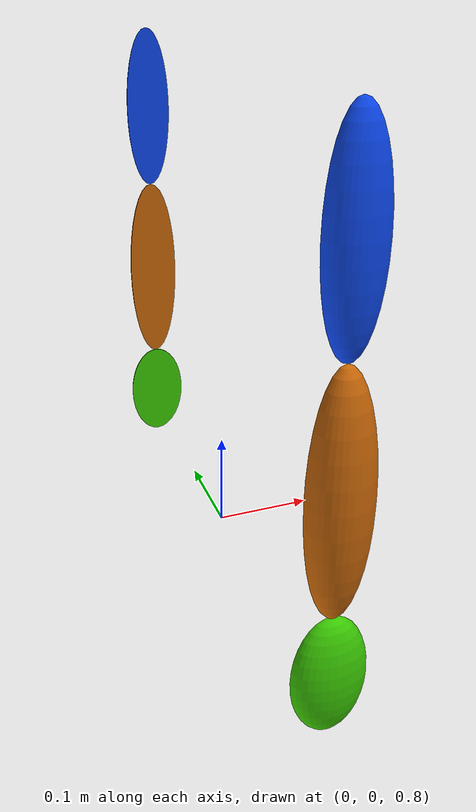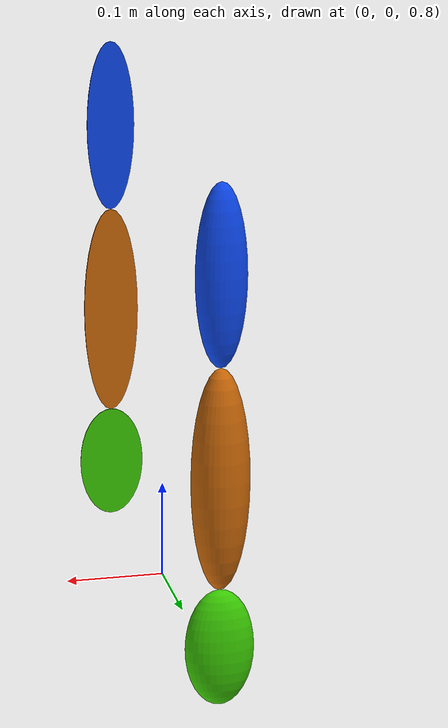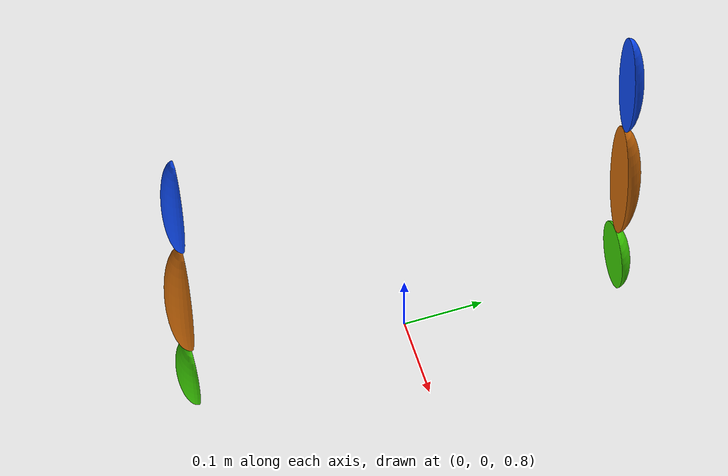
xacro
<?xml version="1.0"?>

<robot xmlns:xacro="http://www.ros.org/wiki/xacro" name="human_model">

    <gazebo>
        <plugin name="gazebo_ros_control" filename="libgazebo_ros_control.so">
            <robotNamespace>/</robotNamespace>
            <robotSimType>gazebo_ros_control/DefaultRobotHWSim</robotSimType>
            <legacyModeNS>true</legacyModeNS>
        </plugin>
    </gazebo>

    <xacro:include filename="$(find human_model)/urdf/arm.urdf.xacro"/>

    <!-- Human upperarm, forearm, hand size parameters -->
    <xacro:property name="arm_scale" value="1"/>
    <xacro:property name="upperarm_length" value="0.1850"/> <!--"${0.2*arm_scale}"/-->
    <xacro:property name="forearm_length" value="0.2264" /> <!--"${0.23*arm_scale}"/-->
    <xacro:property name="hand_length" value="${0.12*arm_scale}"/>
    <xacro:property name="shoulder_height" value="1.3"/>
    <xacro:property name="shoulder_width" value="0.54"/>

    <!-- World link-->
    <link name="world"/>

    <!-- Human model base -->
    <link name="human_base_link">
        <inertial>
            <origin xyz="0 0 0" rpy="0 0 0"/>
            <mass value="1" />
            <inertia ixx="1.0" ixy="0.0" ixz="0.0"
                    iyy="1.0" iyz="0.0"
                    izz="1.0" />
        </inertial>
    </link>
    <joint name="human_base_fixed_joint" type="fixed">
        <origin xyz="0 0 0" rpy="0 0 0"/>
        <parent link="world"/>
        <child link="human_base_link"/>
    </joint>

    <!-- Arms -->
    <xacro:arm prefix="left" parent="human_base_link" dir="-1"
                upperarm_length="${upperarm_length}"
                forearm_length="${forearm_length}"
                hand_length="${hand_length}"
                shoulder_pos_x="0" shoulder_pos_y="${shoulder_width/2}" shoulder_pos_z="${shoulder_height}" />

    <xacro:arm prefix="right" parent="human_base_link" dir="1"
                upperarm_length="${upperarm_length}"
                forearm_length="${forearm_length}"
                hand_length="${hand_length}"
                shoulder_pos_x="0" shoulder_pos_y="-${shoulder_width/2}" shoulder_pos_z="${shoulder_height}" />

</robot>

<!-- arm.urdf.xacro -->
<robot xmlns:xacro="http://www.ros.org/wiki/xacro">

<!-- The arm should be attached to world frame,
     and the shoulder position should be specified by (x,y,z)
     via three prismatic joints.
-->

<param name="pi" value="3.14159"/>

<xacro:macro name="arm" params="dir prefix parent
                                upperarm_length
                                forearm_length
                                hand_length
                                shoulder_pos_x shoulder_pos_y shoulder_pos_z">

    <!-- Shoulder joints -->
    <link name="${prefix}_shoulder_1_link">
        <inertial>
            <origin xyz="0 0 0" rpy="0 0 0"/>
            <mass value="1" />
            <inertia ixx="1.0" ixy="0.0" ixz="0.0"
                    iyy="1.0" iyz="0.0"
                    izz="1.0" />
        </inertial>
    </link>

    <joint name="${prefix}_shoulder_1_joint" type="revolute">
        <origin xyz="${shoulder_pos_x} ${shoulder_pos_y} ${shoulder_pos_z}" rpy="0 0 ${(1-dir)/2*pi}" />
        <axis xyz="0 1 0"/>
        <parent link="${parent}"/>
        <child link="${prefix}_shoulder_1_link"/>
        <limit lower="-${pi}" upper="${pi}" effort="100" velocity="100"/>
    </joint>

    <link name="${prefix}_shoulder_2_link">
        <inertial>
            <origin xyz="0 0 0" rpy="0 0 0"/>
            <mass value="1" />
            <inertia ixx="1.0" ixy="0.0" ixz="0.0"
                    iyy="1.0" iyz="0.0"
                    izz="1.0" />
        </inertial>
    </link>
    <joint name="${prefix}_shoulder_2_joint" type="revolute">
        <origin xyz="0 0 0" rpy="0 0 0"/>
        <axis xyz="1 0 0"/>
        <parent link="${prefix}_shoulder_1_link"/>
        <child link="${prefix}_shoulder_2_link"/>
        <limit lower="-${pi/2}" upper="${pi/2}" effort="100" velocity="100"/>
    </joint>

    <link name="${prefix}_shoulder_3_link"/>
    <joint name="${prefix}_shoulder_3_joint" type="revolute">
        <origin xyz="0 0 0" rpy="0 0 0"/>
        <axis xyz="0 0 1"/>
        <parent link="${prefix}_shoulder_2_link"/>
        <child link="${prefix}_shoulder_3_link"/>
        <limit lower="-${pi*2/3}" upper="${pi*2/3}" effort="100" velocity="100"/>
    </joint>

    <!-- Upperarm link -->
    <link name="${prefix}_upperarm_link">
        <visual>
            <origin xyz="0 0 0" rpy="0 0 ${pi}"/>
            <geometry>
                <mesh filename="package://human_model/meshes/upperarm.dae" scale="${upperarm_length} ${upperarm_length} ${upperarm_length}"/>
            </geometry>
        </visual>
        <collision>
            <origin xyz="0 0 0" rpy="0 0 ${pi}"/>
            <geometry>
                <mesh filename="package://human_model/meshes/upperarm.dae" scale="${upperarm_length} ${upperarm_length} ${upperarm_length}"/>
            </geometry>
        </collision>
        <inertial>
            <origin xyz="0 0 0" rpy="0 0 ${pi}"/>
            <mass value="1" />
            <inertia ixx="1.0" ixy="0.0" ixz="0.0"
                    iyy="1.0" iyz="0.0"
                    izz="1.0" />
        </inertial>
    </link>
    <joint name="${prefix}_upperarm_fixed_joint" type="fixed">
        <origin xyz="0 0 -${upperarm_length/2}" rpy="0 0 0"/>
        <parent link="${prefix}_shoulder_3_link"/>
        <child link="${prefix}_upperarm_link"/>
    </joint>

    <!-- Elbow joints -->
    <link name="${prefix}_elbow_1_link">
        <inertial>
            <origin xyz="0 0 0" rpy="0 0 0"/>
            <mass value="1" />
            <inertia ixx="1.0" ixy="0.0" ixz="0.0"
                    iyy="1.0" iyz="0.0"
                    izz="1.0" />
        </inertial>
    </link>
    <joint name="${prefix}_elbow_1_joint" type="revolute">
        <origin xyz="0 0 -${upperarm_length/2}" rpy="0 0 0"/>
        <axis xyz="1 0 0"/>
        <parent link="${prefix}_upperarm_link"/>
        <child link="${prefix}_elbow_1_link"/>
        <limit lower="-${pi*2/3}" upper="${pi*2/3}" effort="100" velocity="100"/>
    </joint>

    <link name="${prefix}_elbow_2_link">
        <inertial>
            <origin xyz="0 0 0" rpy="0 0 0"/>
            <mass value="1" />
            <inertia ixx="1.0" ixy="0.0" ixz="0.0"
                    iyy="1.0" iyz="0.0"
                    izz="1.0" />
        </inertial>
    </link>

    <joint name="${prefix}_elbow_2_joint" type="revolute">
        <origin xyz="0 0 0" rpy="0 0 0"/>
        <axis xyz="0 0 1"/>
        <parent link="${prefix}_elbow_1_link"/>
        <child link="${prefix}_elbow_2_link"/>
        <limit lower="-${pi*2/3}" upper="${pi*2/3}" effort="100" velocity="100"/>
    </joint>

    <!-- Forearm link -->
    <link name="${prefix}_forearm_link">
        <visual>
            <origin xyz="0 0 0" rpy="0 0 ${pi}"/>
            <geometry>
                <mesh filename="package://human_model/meshes/forearm.dae" scale="${forearm_length} ${forearm_length} ${forearm_length}"/>
            </geometry>
        </visual>
        <collision>
            <origin xyz="0 0 0" rpy="0 0 ${pi}"/>
            <geometry>
                <mesh filename="package://human_model/meshes/forearm.dae" scale="${forearm_length} ${forearm_length} ${forearm_length}"/>
            </geometry>
        </collision>
        <inertial>
            <origin xyz="0 0 0" rpy="0 0 ${pi}"/>
            <mass value="1" />
            <inertia ixx="1.0" ixy="0.0" ixz="0.0"
                    iyy="1.0" iyz="0.0"
                    izz="1.0" />
        </inertial>
    </link>
    <joint name="${prefix}_forearm_fixed_joint" type="fixed">
        <origin xyz="0 0 -${forearm_length/2}" rpy="0 0 0"/>
        <parent link="${prefix}_elbow_2_link"/>
        <child link="${prefix}_forearm_link"/>
    </joint>

    <!-- Wrist joints -->
    <link name="${prefix}_wrist_1_link">
        <inertial>
            <origin xyz="0 0 0" rpy="0 0 0"/>
            <mass value="1" />
            <inertia ixx="1.0" ixy="0.0" ixz="0.0"
                    iyy="1.0" iyz="0.0"
                    izz="1.0" />
        </inertial>
    </link>
    <joint name="${prefix}_wrist_1_joint" type="revolute">
        <origin xyz="0 0 -${forearm_length/2}" rpy="0 0 0"/>
        <axis xyz="1 0 0"/>
        <parent link="${prefix}_forearm_link"/>
        <child link="${prefix}_wrist_1_link"/>
        <limit lower="-${pi/2}" upper="${pi/2}" effort="100" velocity="100"/>
    </joint>

    <link name="${prefix}_wrist_2_link">
        <inertial>
            <origin xyz="0 0 0" rpy="0 0 0"/>
            <mass value="1" />
            <inertia ixx="1.0" ixy="0.0" ixz="0.0"
                    iyy="1.0" iyz="0.0"
                    izz="1.0" />
        </inertial>
    </link>
    <joint name="${prefix}_wrist_2_joint" type="revolute">
        <origin xyz="0 0 0" rpy="0 0 0"/>
        <axis xyz="0 1 0"/>
        <parent link="${prefix}_wrist_1_link"/>
        <child link="${prefix}_wrist_2_link"/>
        <limit lower="-${pi/4}" upper="${pi/4}" effort="100" velocity="100"/>
    </joint>

    <!-- Hand link -->
    <link name="${prefix}_hand_link">
        <visual>
            <origin xyz="0 0 0" rpy="0 0 ${pi}"/>
            <geometry>
                <mesh filename="package://human_model/meshes/hand.dae" scale="${hand_length} ${hand_length} ${hand_length}"/>
            </geometry>
        </visual>
        <collision>
            <origin xyz="0 0 0" rpy="0 0 ${pi}"/>
            <geometry>
                <mesh filename="package://human_model/meshes/hand.dae" scale="${hand_length} ${hand_length} ${hand_length}"/>
            </geometry>
        </collision>
        <inertial>
            <origin xyz="0 0 0" rpy="0 0 ${pi}"/>
            <mass value="1" />
            <inertia ixx="1.0" ixy="0.0" ixz="0.0"
                    iyy="1.0" iyz="0.0"
                    izz="1.0" />
        </inertial>
    </link>
    <joint name="${prefix}_hand_fixed_joint" type="fixed">
        <origin xyz="0 0 -${hand_length/2}" rpy="0 0 0"/>
        <parent link="${prefix}_wrist_2_link"/>
        <child link="${prefix}_hand_link"/>
    </joint>

    <!-- Virtual hand tip -->
    <link name="${prefix}_virtual_hand_tip_link"/>
    <joint name="${prefix}_hand_tip_fixed_joint" type="fixed">
        <origin xyz="0 0 -${hand_length/2}" rpy="0 0 0"/>
        <parent link="${prefix}_hand_link"/>
        <child link="${prefix}_virtual_hand_tip_link"/>
    </joint>

    <!-- Transmission information -->
    <!-- Shoulder joints -->
    <transmission name="${prefix}_shoulder_1_trans">
        <type>transmission_interface/SimpleTransmission</type>
        <joint name="${prefix}_shoulder_1_joint">
          <hardwareInterface>hardware_interface/PositionJointInterface</hardwareInterface>
        </joint>
        <actuator name="${prefix}_shoulder_1_actuator">
          <hardwareInterface>hardware_interface/PositionJointInterface</hardwareInterface>
          <mechanicalReduction>1</mechanicalReduction>
        </actuator>
    </transmission>
    <transmission name="${prefix}_shoulder_2_trans">
        <type>transmission_interface/SimpleTransmission</type>
        <joint name="${prefix}_shoulder_2_joint">
          <hardwareInterface>hardware_interface/PositionJointInterface</hardwareInterface>
        </joint>
        <actuator name="${prefix}_shoulder_2_actuator">
          <hardwareInterface>hardware_interface/PositionJointInterface</hardwareInterface>
          <mechanicalReduction>1</mechanicalReduction>
        </actuator>
    </transmission>
    <transmission name="${prefix}_shoulder_3_trans">
        <type>transmission_interface/SimpleTransmission</type>
        <joint name="${prefix}_shoulder_3_joint">
          <hardwareInterface>hardware_interface/PositionJointInterface</hardwareInterface>
        </joint>
        <actuator name="${prefix}_shoulder_3_actuator">
          <hardwareInterface>hardware_interface/PositionJointInterface</hardwareInterface>
          <mechanicalReduction>1</mechanicalReduction>
        </actuator>
    </transmission>
    <!-- Elbow joints -->
    <transmission name="${prefix}_elbow_1_trans">
        <type>transmission_interface/SimpleTransmission</type>
        <joint name="${prefix}_elbow_1_joint">
          <hardwareInterface>hardware_interface/PositionJointInterface</hardwareInterface>
        </joint>
        <actuator name="${prefix}_elbow_1_actuator">
          <hardwareInterface>hardware_interface/PositionJointInterface</hardwareInterface>
          <mechanicalReduction>1</mechanicalReduction>
        </actuator>
    </transmission>
    <transmission name="${prefix}_elbow_2_trans">
        <type>transmission_interface/SimpleTransmission</type>
        <joint name="${prefix}_elbow_2_joint">
          <hardwareInterface>hardware_interface/PositionJointInterface</hardwareInterface>
        </joint>
        <actuator name="${prefix}_elbow_2_actuator">
          <hardwareInterface>hardware_interface/PositionJointInterface</hardwareInterface>
          <mechanicalReduction>1</mechanicalReduction>
        </actuator>
    </transmission>
    <!-- Wrist joints -->
    <transmission name="${prefix}_wrist_1_trans">
        <type>transmission_interface/SimpleTransmission</type>
        <joint name="${prefix}_wrist_1_joint">
          <hardwareInterface>hardware_interface/PositionJointInterface</hardwareInterface>
        </joint>
        <actuator name="${prefix}_wrist_1_actuator">
          <hardwareInterface>hardware_interface/PositionJointInterface</hardwareInterface>
          <mechanicalReduction>1</mechanicalReduction>
        </actuator>
    </transmission>
    <transmission name="${prefix}_wrist_2_trans">
        <type>transmission_interface/SimpleTransmission</type>
        <joint name="${prefix}_wrist_2_joint">
          <hardwareInterface>hardware_interface/PositionJointInterface</hardwareInterface>
        </joint>
        <actuator name="${prefix}_wrist_2_actuator">
          <hardwareInterface>hardware_interface/PositionJointInterface</hardwareInterface>
          <mechanicalReduction>1</mechanicalReduction>
        </actuator>
    </transmission>

</xacro:macro>

</robot>
